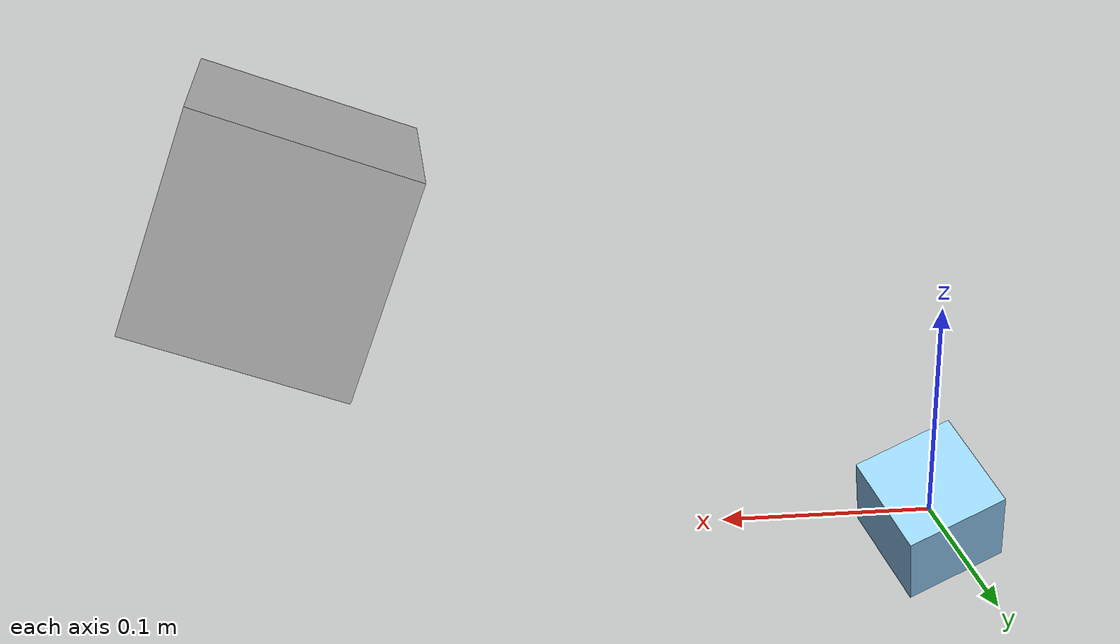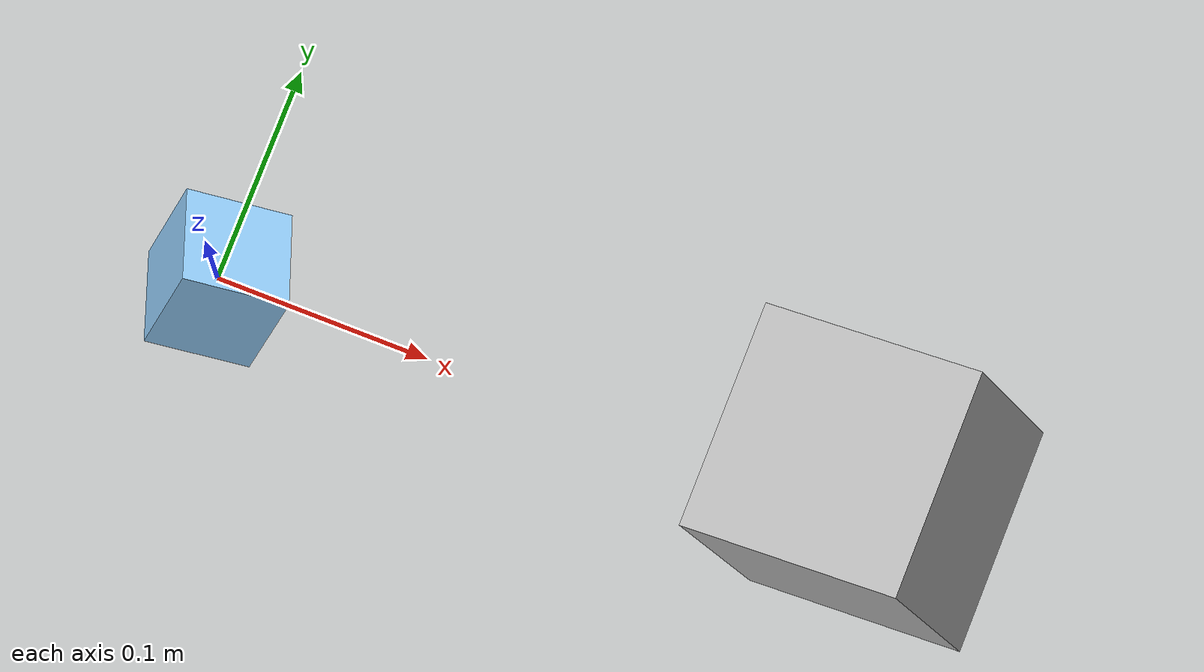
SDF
<?xml version="1.0"?>
<sdf version="1.8">
    <world name="test_world">
        <light name="sun" type="directional">
            <cast_shadows>true</cast_shadows>
            <intensity>1.0</intensity>
            <diffuse>0.8 0.8 0.8 1</diffuse>
            <specular>0.2 0.2 0.2 1</specular>
            <attenuation>
                <range>1000.0</range>
                <linear>0.01</linear>
                <constant>0.9</constant>
                <quadratic>0.001</quadratic>
            </attenuation>
            <direction>-0.5 0.1 -0.9</direction>
            <spot>
                <inner_angle>0.0</inner_angle>
                <outer_angle>0.0</outer_angle>
                <falloff>0.0</falloff>
            </spot>
            <pose>0 0 10 0 -0 0</pose>
        </light>
        <model name="camera">
            <static>true</static>
            <self_collide>false</self_collide>
            <allow_auto_disable>true</allow_auto_disable>
            <enable_wind>false</enable_wind>
            <pose>0.3 0.0 0.15 -0 0.34906585039 3.14159265358979</pose>
            <link name="link">
                <gravity>true</gravity>
                <enable_wind>false</enable_wind>
                <self_collide>false</self_collide>
                <kinematic>false</kinematic>
                <must_be_base_link>true</must_be_base_link>
                <visual name="visual">
                    <cast_shadows>true</cast_shadows>
                    <laser_retro>0.0</laser_retro>
                    <transparency>0.0</transparency>
                    <visibility_flags>4294967295</visibility_flags>
                    <geometry>
                        <box>
                            <size>0.1 0.1 0.1</size>
                        </box>
                    </geometry>
                </visual>
                <sensor name="camera" type="camera">
                    <always_on>true</always_on>
                    <update_rate>30.0</update_rate>
                    <visualize>true</visualize>
                    <topic>main_camera</topic>
                    <camera name="__default__">
                        <horizontal_fov>0.57079632679</horizontal_fov>
                        <image>
                            <width>1000</width>
                            <height>1000</height>
                            <format>R8G8B8</format>
                        </image>
                        <clip>
                            <near>0.01</near>
                            <far>100.0</far>
                        </clip>
                        <visibility_mask>4294967295</visibility_mask>
                    </camera>
                </sensor>
            </link>
        </model>
        <model name="box">
            <static>true</static>
            <self_collide>false</self_collide>
            <allow_auto_disable>true</allow_auto_disable>
            <enable_wind>false</enable_wind>
            <pose>0 0 0 1.0471975512 0.34906585039 0.17453292519</pose>
            <link name="box_link">
                <gravity>true</gravity>
                <enable_wind>false</enable_wind>
                <self_collide>false</self_collide>
                <kinematic>false</kinematic>
                <must_be_base_link>true</must_be_base_link>
                <inertial>
                    <mass>1.0</mass>
                    <pose>0 0 0 0 0 0</pose>
                    <inertia>
                        <ixx>0.0004</ixx>
                        <ixy>0.0</ixy>
                        <ixz>0.0</ixz>
                        <iyy>0.0004</iyy>
                        <iyz>0.0</iyz>
                        <izz>0.0004</izz>
                    </inertia>
                </inertial>
                <collision name="box_collision">
                    <laser_retro>0.0</laser_retro>
                    <max_contacts>10</max_contacts>
                    <geometry>
                        <box>
                            <size>.05 .05 .05</size>
                        </box>
                    </geometry>
                    <surface>
                        <friction>
                            <ode>
                                <mu>1.0</mu>
                                <mu2>1.0</mu2>
                                <fdir1>0 0 0</fdir1>
                                <slip1>0.0</slip1>
                                <slip2>0.0</slip2>
                            </ode>
                        </friction>
                        <contact>
                            <collide_without_contact>false</collide_without_contact>
                            <collide_without_contact_bitmask>1</collide_without_contact_bitmask>
                            <collide_bitmask>65535</collide_bitmask>
                            <category_bitmask>65535</category_bitmask>
                            <poissons_ratio>0.3</poissons_ratio>
                            <elastic_modulus>-1.0</elastic_modulus>
                        </contact>
                    </surface>
                </collision>
                <visual name="box_visual">
                    <cast_shadows>true</cast_shadows>
                    <laser_retro>0.0</laser_retro>
                    <transparency>0.0</transparency>
                    <visibility_flags>4294967295</visibility_flags>
                    <material>
                        <render_order>0.0</render_order>
                        <lighting>true</lighting>
                        <ambient>0.5843137254901961 0.8156862745098039 0.9882352941176471 1.0</ambient>
                        <diffuse>0.5843137254901961 0.8156862745098039 0.9882352941176471 1.0</diffuse>
                        <specular>0.5843137254901961 0.8156862745098039 0.9882352941176471 1.0</specular>
                        <emissive>0 0 0 1</emissive>
                        <double_sided>false</double_sided>
                    </material>
                    <geometry>
                        <box>
                            <size>.05 .05 .05</size>
                        </box>
                    </geometry>
                </visual>
            </link>
        </model>
        <plugin name="ignition::gazebo::systems::Physics" filename="ignition-gazebo-physics-system" />
        <plugin name="ignition::gazebo::systems::Sensors" filename="ignition-gazebo-sensors-system">
            <render_engine>ogre</render_engine>
        </plugin>
        <plugin name="ignition::gazebo::systems::UserCommands" filename="ignition-gazebo-user-commands-system" />
        <plugin name="ignition::gazebo::systems::SceneBroadcaster" filename="ignition-gazebo-scene-broadcaster-system" />
    </world>
</sdf>
